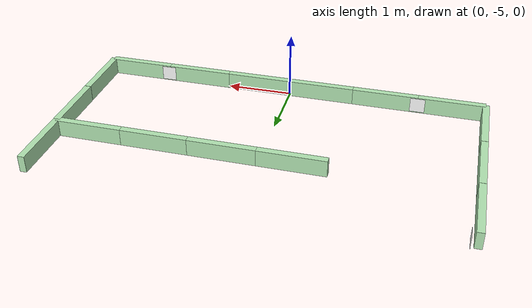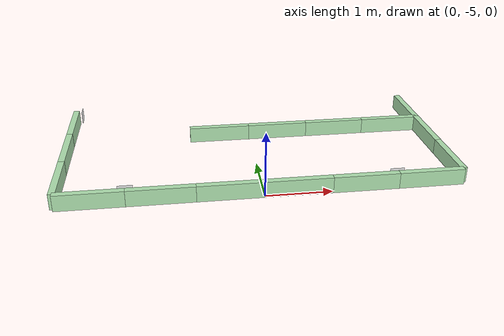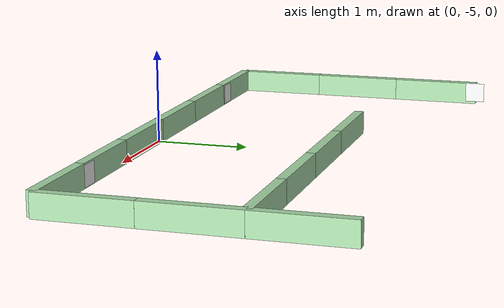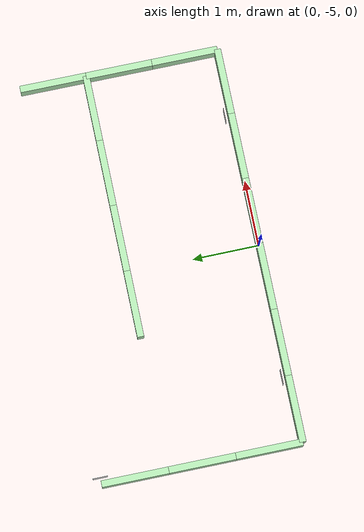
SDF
<sdf version="1.6">
 <world name="default">
  <model name="wall_100_25h_1_clone_3">
   <link name="link">
    <inertial>
     <mass>1</mass>
     <inertia>
      <ixx>0.166667</ixx>
      <ixy>0</ixy>
      <ixz>0</ixz>
      <iyy>0.166667</iyy>
      <iyz>0</iyz>
      <izz>0.166667</izz>
     </inertia>
    </inertial>
    <visual name="visual">
     <geometry><box><size>1 0.1 0.25</size></box></geometry>
     <material>
      <script><name>Gazebo/Grey</name><uri>file://media/materials/scripts/gazebo.material</uri></script>
      <ambient>0.3 0.5 0.3 1</ambient>
      <diffuse>0.7 0.9 0.7 1</diffuse>
      <specular>0.01 0.02 0.01 1</specular>
      <emissive>0 0 0 1</emissive>
      <lighting>1</lighting>
      <shader type="vertex"><normal_map>__default__</normal_map></shader>
     </material>
    </visual>
    <collision name="collision">
     <geometry><box><size>1 0.1 0.25</size></box></geometry>
     <surface>
      <friction>
       <ode><mu>1</mu><mu2>1</mu2><fdir1>0 0 0</fdir1><slip1>0</slip1><slip2>0</slip2></ode>
       <torsional>
        <coefficient>1</coefficient>
        <patch_radius>0</patch_radius>
        <surface_radius>0</surface_radius>
        <use_patch_radius>1</use_patch_radius>
        <ode><slip>0</slip></ode>
       </torsional>
      </friction>
      <bounce><restitution_coefficient>0</restitution_coefficient><threshold>1e+06</threshold></bounce>
      <contact>
       <collide_without_contact>0</collide_without_contact>
       <collide_without_contact_bitmask>1</collide_without_contact_bitmask>
       <collide_bitmask>1</collide_bitmask>
       <ode>
        <soft_cfm>0</soft_cfm>
        <soft_erp>0.2</soft_erp>
        <kp>1e+13</kp>
        <kd>1</kd>
        <max_vel>0.01</max_vel>
        <min_depth>0</min_depth>
       </ode>
       <bullet>
        <split_impulse>1</split_impulse>
        <split_impulse_penetration_threshold>-0.01</split_impulse_penetration_threshold>
        <soft_cfm>0</soft_cfm>
        <soft_erp>0.2</soft_erp>
        <kp>1e+13</kp>
        <kd>1</kd>
       </bullet>
      </contact>
     </surface>
    </collision>
   </link>
   <static>1</static>
   <pose>-0.5 -3 0.125 0.000404 -0 0</pose>
  </model>
  <model name="wall_100_25h_1_clone_4">
   <link name="link">
    <inertial>
     <mass>1</mass>
     <inertia>
      <ixx>0.166667</ixx>
      <ixy>0</ixy>
      <ixz>0</ixz>
      <iyy>0.166667</iyy>
      <iyz>0</iyz>
      <izz>0.166667</izz>
     </inertia>
    </inertial>
    <visual name="visual">
     <geometry><box><size>1 0.1 0.25</size></box></geometry>
     <material>
      <script><name>Gazebo/Grey</name><uri>file://media/materials/scripts/gazebo.material</uri></script>
      <ambient>0.3 0.5 0.3 1</ambient>
      <diffuse>0.7 0.9 0.7 1</diffuse>
      <specular>0.01 0.02 0.01 1</specular>
      <emissive>0 0 0 1</emissive>
      <lighting>1</lighting>
      <shader type="vertex"><normal_map>__default__</normal_map></shader>
     </material>
    </visual>
    <collision name="collision">
     <geometry><box><size>1 0.1 0.25</size></box></geometry>
     <surface>
      <friction>
       <ode><mu>1</mu><mu2>1</mu2><fdir1>0 0 0</fdir1><slip1>0</slip1><slip2>0</slip2></ode>
       <torsional>
        <coefficient>1</coefficient>
        <patch_radius>0</patch_radius>
        <surface_radius>0</surface_radius>
        <use_patch_radius>1</use_patch_radius>
        <ode><slip>0</slip></ode>
       </torsional>
      </friction>
      <bounce><restitution_coefficient>0</restitution_coefficient><threshold>1e+06</threshold></bounce>
      <contact>
       <collide_without_contact>0</collide_without_contact>
       <collide_without_contact_bitmask>1</collide_without_contact_bitmask>
       <collide_bitmask>1</collide_bitmask>
       <ode>
        <soft_cfm>0</soft_cfm>
        <soft_erp>0.2</soft_erp>
        <kp>1e+13</kp>
        <kd>1</kd>
        <max_vel>0.01</max_vel>
        <min_depth>0</min_depth>
       </ode>
       <bullet>
        <split_impulse>1</split_impulse>
        <split_impulse_penetration_threshold>-0.01</split_impulse_penetration_threshold>
        <soft_cfm>0</soft_cfm>
        <soft_erp>0.2</soft_erp>
        <kp>1e+13</kp>
        <kd>1</kd>
       </bullet>
      </contact>
     </surface>
    </collision>
   </link>
   <static>1</static>
   <pose>0.5 -3 0.125 0.000404 -0 0</pose>
  </model>
  <model name="wall_100_25h_1_clone_5">
   <link name="link">
    <inertial>
     <mass>1</mass>
     <inertia>
      <ixx>0.166667</ixx>
      <ixy>0</ixy>
      <ixz>0</ixz>
      <iyy>0.166667</iyy>
      <iyz>0</iyz>
      <izz>0.166667</izz>
     </inertia>
    </inertial>
    <visual name="visual">
     <geometry><box><size>1 0.1 0.25</size></box></geometry>
     <material>
      <script><name>Gazebo/Grey</name><uri>file://media/materials/scripts/gazebo.material</uri></script>
      <ambient>0.3 0.5 0.3 1</ambient>
      <diffuse>0.7 0.9 0.7 1</diffuse>
      <specular>0.01 0.02 0.01 1</specular>
      <emissive>0 0 0 1</emissive>
      <lighting>1</lighting>
      <shader type="vertex"><normal_map>__default__</normal_map></shader>
     </material>
    </visual>
    <collision name="collision">
     <geometry><box><size>1 0.1 0.25</size></box></geometry>
     <surface>
      <friction>
       <ode><mu>1</mu><mu2>1</mu2><fdir1>0 0 0</fdir1><slip1>0</slip1><slip2>0</slip2></ode>
       <torsional>
        <coefficient>1</coefficient>
        <patch_radius>0</patch_radius>
        <surface_radius>0</surface_radius>
        <use_patch_radius>1</use_patch_radius>
        <ode><slip>0</slip></ode>
       </torsional>
      </friction>
      <bounce><restitution_coefficient>0</restitution_coefficient><threshold>1e+06</threshold></bounce>
      <contact>
       <collide_without_contact>0</collide_without_contact>
       <collide_without_contact_bitmask>1</collide_without_contact_bitmask>
       <collide_bitmask>1</collide_bitmask>
       <ode>
        <soft_cfm>0</soft_cfm>
        <soft_erp>0.2</soft_erp>
        <kp>1e+13</kp>
        <kd>1</kd>
        <max_vel>0.01</max_vel>
        <min_depth>0</min_depth>
       </ode>
       <bullet>
        <split_impulse>1</split_impulse>
        <split_impulse_penetration_threshold>-0.01</split_impulse_penetration_threshold>
        <soft_cfm>0</soft_cfm>
        <soft_erp>0.2</soft_erp>
        <kp>1e+13</kp>
        <kd>1</kd>
       </bullet>
      </contact>
     </surface>
    </collision>
   </link>
   <static>1</static>
   <pose>1.5 -3 0.125 0.000404 -0 0</pose>
  </model>
  <model name="wall_100_25h_1_clone_6">
   <link name="link">
    <inertial>
     <mass>1</mass>
     <inertia>
      <ixx>0.166667</ixx>
      <ixy>0</ixy>
      <ixz>0</ixz>
      <iyy>0.166667</iyy>
      <iyz>0</iyz>
      <izz>0.166667</izz>
     </inertia>
    </inertial>
    <visual name="visual">
     <geometry><box><size>1 0.1 0.25</size></box></geometry>
     <material>
      <script><name>Gazebo/Grey</name><uri>file://media/materials/scripts/gazebo.material</uri></script>
      <ambient>0.3 0.5 0.3 1</ambient>
      <diffuse>0.7 0.9 0.7 1</diffuse>
      <specular>0.01 0.02 0.01 1</specular>
      <emissive>0 0 0 1</emissive>
      <lighting>1</lighting>
      <shader type="vertex"><normal_map>__default__</normal_map></shader>
     </material>
    </visual>
    <collision name="collision">
     <geometry><box><size>1 0.1 0.25</size></box></geometry>
     <surface>
      <friction>
       <ode><mu>1</mu><mu2>1</mu2><fdir1>0 0 0</fdir1><slip1>0</slip1><slip2>0</slip2></ode>
       <torsional>
        <coefficient>1</coefficient>
        <patch_radius>0</patch_radius>
        <surface_radius>0</surface_radius>
        <use_patch_radius>1</use_patch_radius>
        <ode><slip>0</slip></ode>
       </torsional>
      </friction>
      <bounce><restitution_coefficient>0</restitution_coefficient><threshold>1e+06</threshold></bounce>
      <contact>
       <collide_without_contact>0</collide_without_contact>
       <collide_without_contact_bitmask>1</collide_without_contact_bitmask>
       <collide_bitmask>1</collide_bitmask>
       <ode>
        <soft_cfm>0</soft_cfm>
        <soft_erp>0.2</soft_erp>
        <kp>1e+13</kp>
        <kd>1</kd>
        <max_vel>0.01</max_vel>
        <min_depth>0</min_depth>
       </ode>
       <bullet>
        <split_impulse>1</split_impulse>
        <split_impulse_penetration_threshold>-0.01</split_impulse_penetration_threshold>
        <soft_cfm>0</soft_cfm>
        <soft_erp>0.2</soft_erp>
        <kp>1e+13</kp>
        <kd>1</kd>
       </bullet>
      </contact>
     </surface>
    </collision>
   </link>
   <static>1</static>
   <pose>2.5 -3 0.125 0.000404 -0 0</pose>
  </model>
  <model name="wall_100_25h_1_clone_9_clone_clone">
   <link name="link">
    <inertial>
     <mass>1</mass>
     <inertia>
      <ixx>0.166667</ixx>
      <ixy>0</ixy>
      <ixz>0</ixz>
      <iyy>0.166667</iyy>
      <iyz>0</iyz>
      <izz>0.166667</izz>
     </inertia>
    </inertial>
    <visual name="visual">
     <geometry><box><size>1 0.1 0.25</size></box></geometry>
     <material>
      <script><name>Gazebo/Grey</name><uri>file://media/materials/scripts/gazebo.material</uri></script>
      <ambient>0.3 0.5 0.3 1</ambient>
      <diffuse>0.7 0.9 0.7 1</diffuse>
      <specular>0.01 0.02 0.01 1</specular>
      <emissive>0 0 0 1</emissive>
      <lighting>1</lighting>
      <shader type="vertex"><normal_map>__default__</normal_map></shader>
     </material>
    </visual>
    <collision name="collision">
     <geometry><box><size>1 0.1 0.25</size></box></geometry>
     <surface>
      <friction>
       <ode><mu>1</mu><mu2>1</mu2><fdir1>0 0 0</fdir1><slip1>0</slip1><slip2>0</slip2></ode>
       <torsional>
        <coefficient>1</coefficient>
        <patch_radius>0</patch_radius>
        <surface_radius>0</surface_radius>
        <use_patch_radius>1</use_patch_radius>
        <ode><slip>0</slip></ode>
       </torsional>
      </friction>
      <bounce><restitution_coefficient>0</restitution_coefficient><threshold>1e+06</threshold></bounce>
      <contact>
       <collide_without_contact>0</collide_without_contact>
       <collide_without_contact_bitmask>1</collide_without_contact_bitmask>
       <collide_bitmask>1</collide_bitmask>
       <ode>
        <soft_cfm>0</soft_cfm>
        <soft_erp>0.2</soft_erp>
        <kp>1e+13</kp>
        <kd>1</kd>
        <max_vel>0.01</max_vel>
        <min_depth>0</min_depth>
       </ode>
       <bullet>
        <split_impulse>1</split_impulse>
        <split_impulse_penetration_threshold>-0.01</split_impulse_penetration_threshold>
        <soft_cfm>0</soft_cfm>
        <soft_erp>0.2</soft_erp>
        <kp>1e+13</kp>
        <kd>1</kd>
       </bullet>
      </contact>
     </surface>
    </collision>
   </link>
   <static>1</static>
   <pose>-3 -2.5 0.125 0 0.000404 -1.57111</pose>
  </model>
  <model name="wall_100_25h_1_clone_9_clone_clone_0">
   <link name="link">
    <inertial>
     <mass>1</mass>
     <inertia>
      <ixx>0.166667</ixx>
      <ixy>0</ixy>
      <ixz>0</ixz>
      <iyy>0.166667</iyy>
      <iyz>0</iyz>
      <izz>0.166667</izz>
     </inertia>
    </inertial>
    <visual name="visual">
     <geometry><box><size>1 0.1 0.25</size></box></geometry>
     <material>
      <script><name>Gazebo/Grey</name><uri>file://media/materials/scripts/gazebo.material</uri></script>
      <ambient>0.3 0.5 0.3 1</ambient>
      <diffuse>0.7 0.9 0.7 1</diffuse>
      <specular>0.01 0.02 0.01 1</specular>
      <emissive>0 0 0 1</emissive>
      <lighting>1</lighting>
      <shader type="vertex"><normal_map>__default__</normal_map></shader>
     </material>
    </visual>
    <collision name="collision">
     <geometry><box><size>1 0.1 0.25</size></box></geometry>
     <surface>
      <friction>
       <ode><mu>1</mu><mu2>1</mu2><fdir1>0 0 0</fdir1><slip1>0</slip1><slip2>0</slip2></ode>
       <torsional>
        <coefficient>1</coefficient>
        <patch_radius>0</patch_radius>
        <surface_radius>0</surface_radius>
        <use_patch_radius>1</use_patch_radius>
        <ode><slip>0</slip></ode>
       </torsional>
      </friction>
      <bounce><restitution_coefficient>0</restitution_coefficient><threshold>1e+06</threshold></bounce>
      <contact>
       <collide_without_contact>0</collide_without_contact>
       <collide_without_contact_bitmask>1</collide_without_contact_bitmask>
       <collide_bitmask>1</collide_bitmask>
       <ode>
        <soft_cfm>0</soft_cfm>
        <soft_erp>0.2</soft_erp>
        <kp>1e+13</kp>
        <kd>1</kd>
        <max_vel>0.01</max_vel>
        <min_depth>0</min_depth>
       </ode>
       <bullet>
        <split_impulse>1</split_impulse>
        <split_impulse_penetration_threshold>-0.01</split_impulse_penetration_threshold>
        <soft_cfm>0</soft_cfm>
        <soft_erp>0.2</soft_erp>
        <kp>1e+13</kp>
        <kd>1</kd>
       </bullet>
      </contact>
     </surface>
    </collision>
   </link>
   <static>1</static>
   <pose>-3 -3.5 0.125 0 0.000404 -1.57111</pose>
  </model>
  <model name="wall_100_25h_1_clone_9_clone_clone_1">
   <link name="link">
    <inertial>
     <mass>1</mass>
     <inertia>
      <ixx>0.166667</ixx>
      <ixy>0</ixy>
      <ixz>0</ixz>
      <iyy>0.166667</iyy>
      <iyz>0</iyz>
      <izz>0.166667</izz>
     </inertia>
    </inertial>
    <visual name="visual">
     <geometry><box><size>1 0.1 0.25</size></box></geometry>
     <material>
      <script><name>Gazebo/Grey</name><uri>file://media/materials/scripts/gazebo.material</uri></script>
      <ambient>0.3 0.5 0.3 1</ambient>
      <diffuse>0.7 0.9 0.7 1</diffuse>
      <specular>0.01 0.02 0.01 1</specular>
      <emissive>0 0 0 1</emissive>
      <lighting>1</lighting>
      <shader type="vertex"><normal_map>__default__</normal_map></shader>
     </material>
    </visual>
    <collision name="collision">
     <geometry><box><size>1 0.1 0.25</size></box></geometry>
     <surface>
      <friction>
       <ode><mu>1</mu><mu2>1</mu2><fdir1>0 0 0</fdir1><slip1>0</slip1><slip2>0</slip2></ode>
       <torsional>
        <coefficient>1</coefficient>
        <patch_radius>0</patch_radius>
        <surface_radius>0</surface_radius>
        <use_patch_radius>1</use_patch_radius>
        <ode><slip>0</slip></ode>
       </torsional>
      </friction>
      <bounce><restitution_coefficient>0</restitution_coefficient><threshold>1e+06</threshold></bounce>
      <contact>
       <collide_without_contact>0</collide_without_contact>
       <collide_without_contact_bitmask>1</collide_without_contact_bitmask>
       <collide_bitmask>1</collide_bitmask>
       <ode>
        <soft_cfm>0</soft_cfm>
        <soft_erp>0.2</soft_erp>
        <kp>1e+13</kp>
        <kd>1</kd>
        <max_vel>0.01</max_vel>
        <min_depth>0</min_depth>
       </ode>
       <bullet>
        <split_impulse>1</split_impulse>
        <split_impulse_penetration_threshold>-0.01</split_impulse_penetration_threshold>
        <soft_cfm>0</soft_cfm>
        <soft_erp>0.2</soft_erp>
        <kp>1e+13</kp>
        <kd>1</kd>
       </bullet>
      </contact>
     </surface>
    </collision>
   </link>
   <static>1</static>
   <pose>-3 -4.5 0.125 0 0.000404 -1.57111</pose>
  </model>
  <model name="wall_100_25h_1_clone_9_clone_clone_2">
   <link name="link">
    <inertial>
     <mass>1</mass>
     <inertia>
      <ixx>0.166667</ixx>
      <ixy>0</ixy>
      <ixz>0</ixz>
      <iyy>0.166667</iyy>
      <iyz>0</iyz>
      <izz>0.166667</izz>
     </inertia>
    </inertial>
    <visual name="visual">
     <geometry><box><size>1 0.1 0.25</size></box></geometry>
     <material>
      <script><name>Gazebo/Grey</name><uri>file://media/materials/scripts/gazebo.material</uri></script>
      <ambient>0.3 0.5 0.3 1</ambient>
      <diffuse>0.7 0.9 0.7 1</diffuse>
      <specular>0.01 0.02 0.01 1</specular>
      <emissive>0 0 0 1</emissive>
      <lighting>1</lighting>
      <shader type="vertex"><normal_map>__default__</normal_map></shader>
     </material>
    </visual>
    <collision name="collision">
     <geometry><box><size>1 0.1 0.25</size></box></geometry>
     <surface>
      <friction>
       <ode><mu>1</mu><mu2>1</mu2><fdir1>0 0 0</fdir1><slip1>0</slip1><slip2>0</slip2></ode>
       <torsional>
        <coefficient>1</coefficient>
        <patch_radius>0</patch_radius>
        <surface_radius>0</surface_radius>
        <use_patch_radius>1</use_patch_radius>
        <ode><slip>0</slip></ode>
       </torsional>
      </friction>
      <bounce><restitution_coefficient>0</restitution_coefficient><threshold>1e+06</threshold></bounce>
      <contact>
       <collide_without_contact>0</collide_without_contact>
       <collide_without_contact_bitmask>1</collide_without_contact_bitmask>
       <collide_bitmask>1</collide_bitmask>
       <ode>
        <soft_cfm>0</soft_cfm>
        <soft_erp>0.2</soft_erp>
        <kp>1e+13</kp>
        <kd>1</kd>
        <max_vel>0.01</max_vel>
        <min_depth>0</min_depth>
       </ode>
       <bullet>
        <split_impulse>1</split_impulse>
        <split_impulse_penetration_threshold>-0.01</split_impulse_penetration_threshold>
        <soft_cfm>0</soft_cfm>
        <soft_erp>0.2</soft_erp>
        <kp>1e+13</kp>
        <kd>1</kd>
       </bullet>
      </contact>
     </surface>
    </collision>
   </link>
   <static>1</static>
   <pose>3 -3.5 0.125 0 0.000404 -1.57111</pose>
  </model>
  <model name="wall_100_25h_1_clone_9_clone_clone_3">
   <link name="link">
    <inertial>
     <mass>1</mass>
     <inertia>
      <ixx>0.166667</ixx>
      <ixy>0</ixy>
      <ixz>0</ixz>
      <iyy>0.166667</iyy>
      <iyz>0</iyz>
      <izz>0.166667</izz>
     </inertia>
    </inertial>
    <visual name="visual">
     <geometry><box><size>1 0.1 0.25</size></box></geometry>
     <material>
      <script><name>Gazebo/Grey</name><uri>file://media/materials/scripts/gazebo.material</uri></script>
      <ambient>0.3 0.5 0.3 1</ambient>
      <diffuse>0.7 0.9 0.7 1</diffuse>
      <specular>0.01 0.02 0.01 1</specular>
      <emissive>0 0 0 1</emissive>
      <lighting>1</lighting>
      <shader type="vertex"><normal_map>__default__</normal_map></shader>
     </material>
    </visual>
    <collision name="collision">
     <geometry><box><size>1 0.1 0.25</size></box></geometry>
     <surface>
      <friction>
       <ode><mu>1</mu><mu2>1</mu2><fdir1>0 0 0</fdir1><slip1>0</slip1><slip2>0</slip2></ode>
       <torsional>
        <coefficient>1</coefficient>
        <patch_radius>0</patch_radius>
        <surface_radius>0</surface_radius>
        <use_patch_radius>1</use_patch_radius>
        <ode><slip>0</slip></ode>
       </torsional>
      </friction>
      <bounce><restitution_coefficient>0</restitution_coefficient><threshold>1e+06</threshold></bounce>
      <contact>
       <collide_without_contact>0</collide_without_contact>
       <collide_without_contact_bitmask>1</collide_without_contact_bitmask>
       <collide_bitmask>1</collide_bitmask>
       <ode>
        <soft_cfm>0</soft_cfm>
        <soft_erp>0.2</soft_erp>
        <kp>1e+13</kp>
        <kd>1</kd>
        <max_vel>0.01</max_vel>
        <min_depth>0</min_depth>
       </ode>
       <bullet>
        <split_impulse>1</split_impulse>
        <split_impulse_penetration_threshold>-0.01</split_impulse_penetration_threshold>
        <soft_cfm>0</soft_cfm>
        <soft_erp>0.2</soft_erp>
        <kp>1e+13</kp>
        <kd>1</kd>
       </bullet>
      </contact>
     </surface>
    </collision>
   </link>
   <static>1</static>
   <pose>3 -4.5 0.125 0 0.000404 -1.57111</pose>
  </model>
  <model name="wall_100_25h_1_clone_9_clone_clone_4">
   <link name="link">
    <inertial>
     <mass>1</mass>
     <inertia>
      <ixx>0.166667</ixx>
      <ixy>0</ixy>
      <ixz>0</ixz>
      <iyy>0.166667</iyy>
      <iyz>0</iyz>
      <izz>0.166667</izz>
     </inertia>
    </inertial>
    <visual name="visual">
     <geometry><box><size>1 0.1 0.25</size></box></geometry>
     <material>
      <script><name>Gazebo/Grey</name><uri>file://media/materials/scripts/gazebo.material</uri></script>
      <ambient>0.3 0.5 0.3 1</ambient>
      <diffuse>0.7 0.9 0.7 1</diffuse>
      <specular>0.01 0.02 0.01 1</specular>
      <emissive>0 0 0 1</emissive>
      <lighting>1</lighting>
      <shader type="vertex"><normal_map>__default__</normal_map></shader>
     </material>
    </visual>
    <collision name="collision">
     <geometry><box><size>1 0.1 0.25</size></box></geometry>
     <surface>
      <friction>
       <ode><mu>1</mu><mu2>1</mu2><fdir1>0 0 0</fdir1><slip1>0</slip1><slip2>0</slip2></ode>
       <torsional>
        <coefficient>1</coefficient>
        <patch_radius>0</patch_radius>
        <surface_radius>0</surface_radius>
        <use_patch_radius>1</use_patch_radius>
        <ode><slip>0</slip></ode>
       </torsional>
      </friction>
      <bounce><restitution_coefficient>0</restitution_coefficient><threshold>1e+06</threshold></bounce>
      <contact>
       <collide_without_contact>0</collide_without_contact>
       <collide_without_contact_bitmask>1</collide_without_contact_bitmask>
       <collide_bitmask>1</collide_bitmask>
       <ode>
        <soft_cfm>0</soft_cfm>
        <soft_erp>0.2</soft_erp>
        <kp>1e+13</kp>
        <kd>1</kd>
        <max_vel>0.01</max_vel>
        <min_depth>0</min_depth>
       </ode>
       <bullet>
        <split_impulse>1</split_impulse>
        <split_impulse_penetration_threshold>-0.01</split_impulse_penetration_threshold>
        <soft_cfm>0</soft_cfm>
        <soft_erp>0.2</soft_erp>
        <kp>1e+13</kp>
        <kd>1</kd>
       </bullet>
      </contact>
     </surface>
    </collision>
   </link>
   <static>1</static>
   <pose>3 -2.5 0.125 0 0.000404 -1.57111</pose>
  </model>
  <model name="wall_100_25h_1_clone_3_clone">
   <link name="link">
    <inertial>
     <mass>1</mass>
     <inertia>
      <ixx>0.166667</ixx>
      <ixy>0</ixy>
      <ixz>0</ixz>
      <iyy>0.166667</iyy>
      <iyz>0</iyz>
      <izz>0.166667</izz>
     </inertia>
    </inertial>
    <visual name="visual">
     <geometry><box><size>1 0.1 0.25</size></box></geometry>
     <material>
      <script><name>Gazebo/Grey</name><uri>file://media/materials/scripts/gazebo.material</uri></script>
      <ambient>0.3 0.5 0.3 1</ambient>
      <diffuse>0.7 0.9 0.7 1</diffuse>
      <specular>0.01 0.02 0.01 1</specular>
      <emissive>0 0 0 1</emissive>
      <lighting>1</lighting>
      <shader type="vertex"><normal_map>__default__</normal_map></shader>
     </material>
    </visual>
    <collision name="collision">
     <geometry><box><size>1 0.1 0.25</size></box></geometry>
     <surface>
      <friction>
       <ode><mu>1</mu><mu2>1</mu2><fdir1>0 0 0</fdir1><slip1>0</slip1><slip2>0</slip2></ode>
       <torsional>
        <coefficient>1</coefficient>
        <patch_radius>0</patch_radius>
        <surface_radius>0</surface_radius>
        <use_patch_radius>1</use_patch_radius>
        <ode><slip>0</slip></ode>
       </torsional>
      </friction>
      <bounce><restitution_coefficient>0</restitution_coefficient><threshold>1e+06</threshold></bounce>
      <contact>
       <collide_without_contact>0</collide_without_contact>
       <collide_without_contact_bitmask>1</collide_without_contact_bitmask>
       <collide_bitmask>1</collide_bitmask>
       <ode>
        <soft_cfm>0</soft_cfm>
        <soft_erp>0.2</soft_erp>
        <kp>1e+13</kp>
        <kd>1</kd>
        <max_vel>0.01</max_vel>
        <min_depth>0</min_depth>
       </ode>
       <bullet>
        <split_impulse>1</split_impulse>
        <split_impulse_penetration_threshold>-0.01</split_impulse_penetration_threshold>
        <soft_cfm>0</soft_cfm>
        <soft_erp>0.2</soft_erp>
        <kp>1e+13</kp>
        <kd>1</kd>
       </bullet>
      </contact>
     </surface>
    </collision>
   </link>
   <static>1</static>
   <pose>-2.5 -5 0.125 0.000404 -0 0</pose>
  </model>
  <model name="wall_100_25h_1_clone_3_clone_0">
   <link name="link">
    <inertial>
     <mass>1</mass>
     <inertia>
      <ixx>0.166667</ixx>
      <ixy>0</ixy>
      <ixz>0</ixz>
      <iyy>0.166667</iyy>
      <iyz>0</iyz>
      <izz>0.166667</izz>
     </inertia>
    </inertial>
    <visual name="visual">
     <geometry><box><size>1 0.1 0.25</size></box></geometry>
     <material>
      <script><name>Gazebo/Grey</name><uri>file://media/materials/scripts/gazebo.material</uri></script>
      <ambient>0.3 0.5 0.3 1</ambient>
      <diffuse>0.7 0.9 0.7 1</diffuse>
      <specular>0.01 0.02 0.01 1</specular>
      <emissive>0 0 0 1</emissive>
      <lighting>1</lighting>
      <shader type="vertex"><normal_map>__default__</normal_map></shader>
     </material>
    </visual>
    <collision name="collision">
     <geometry><box><size>1 0.1 0.25</size></box></geometry>
     <surface>
      <friction>
       <ode><mu>1</mu><mu2>1</mu2><fdir1>0 0 0</fdir1><slip1>0</slip1><slip2>0</slip2></ode>
       <torsional>
        <coefficient>1</coefficient>
        <patch_radius>0</patch_radius>
        <surface_radius>0</surface_radius>
        <use_patch_radius>1</use_patch_radius>
        <ode><slip>0</slip></ode>
       </torsional>
      </friction>
      <bounce><restitution_coefficient>0</restitution_coefficient><threshold>1e+06</threshold></bounce>
      <contact>
       <collide_without_contact>0</collide_without_contact>
       <collide_without_contact_bitmask>1</collide_without_contact_bitmask>
       <collide_bitmask>1</collide_bitmask>
       <ode>
        <soft_cfm>0</soft_cfm>
        <soft_erp>0.2</soft_erp>
        <kp>1e+13</kp>
        <kd>1</kd>
        <max_vel>0.01</max_vel>
        <min_depth>0</min_depth>
       </ode>
       <bullet>
        <split_impulse>1</split_impulse>
        <split_impulse_penetration_threshold>-0.01</split_impulse_penetration_threshold>
        <soft_cfm>0</soft_cfm>
        <soft_erp>0.2</soft_erp>
        <kp>1e+13</kp>
        <kd>1</kd>
       </bullet>
      </contact>
     </surface>
    </collision>
   </link>
   <static>1</static>
   <pose>-1.5 -5 0.125 0.000404 -0 0</pose>
  </model>
  <model name="wall_100_25h_1_clone_3_clone_1">
   <link name="link">
    <inertial>
     <mass>1</mass>
     <inertia>
      <ixx>0.166667</ixx>
      <ixy>0</ixy>
      <ixz>0</ixz>
      <iyy>0.166667</iyy>
      <iyz>0</iyz>
      <izz>0.166667</izz>
     </inertia>
    </inertial>
    <visual name="visual">
     <geometry><box><size>1 0.1 0.25</size></box></geometry>
     <material>
      <script><name>Gazebo/Grey</name><uri>file://media/materials/scripts/gazebo.material</uri></script>
      <ambient>0.3 0.5 0.3 1</ambient>
      <diffuse>0.7 0.9 0.7 1</diffuse>
      <specular>0.01 0.02 0.01 1</specular>
      <emissive>0 0 0 1</emissive>
      <lighting>1</lighting>
      <shader type="vertex"><normal_map>__default__</normal_map></shader>
     </material>
    </visual>
    <collision name="collision">
     <geometry><box><size>1 0.1 0.25</size></box></geometry>
     <surface>
      <friction>
       <ode><mu>1</mu><mu2>1</mu2><fdir1>0 0 0</fdir1><slip1>0</slip1><slip2>0</slip2></ode>
       <torsional>
        <coefficient>1</coefficient>
        <patch_radius>0</patch_radius>
        <surface_radius>0</surface_radius>
        <use_patch_radius>1</use_patch_radius>
        <ode><slip>0</slip></ode>
       </torsional>
      </friction>
      <bounce><restitution_coefficient>0</restitution_coefficient><threshold>1e+06</threshold></bounce>
      <contact>
       <collide_without_contact>0</collide_without_contact>
       <collide_without_contact_bitmask>1</collide_without_contact_bitmask>
       <collide_bitmask>1</collide_bitmask>
       <ode>
        <soft_cfm>0</soft_cfm>
        <soft_erp>0.2</soft_erp>
        <kp>1e+13</kp>
        <kd>1</kd>
        <max_vel>0.01</max_vel>
        <min_depth>0</min_depth>
       </ode>
       <bullet>
        <split_impulse>1</split_impulse>
        <split_impulse_penetration_threshold>-0.01</split_impulse_penetration_threshold>
        <soft_cfm>0</soft_cfm>
        <soft_erp>0.2</soft_erp>
        <kp>1e+13</kp>
        <kd>1</kd>
       </bullet>
      </contact>
     </surface>
    </collision>
   </link>
   <static>1</static>
   <pose>-0.5 -5 0.125 0.000404 -0 0</pose>
  </model>
  <model name="wall_100_25h_1_clone_3_clone_2">
   <link name="link">
    <inertial>
     <mass>1</mass>
     <inertia>
      <ixx>0.166667</ixx>
      <ixy>0</ixy>
      <ixz>0</ixz>
      <iyy>0.166667</iyy>
      <iyz>0</iyz>
      <izz>0.166667</izz>
     </inertia>
    </inertial>
    <visual name="visual">
     <geometry><box><size>1 0.1 0.25</size></box></geometry>
     <material>
      <script><name>Gazebo/Grey</name><uri>file://media/materials/scripts/gazebo.material</uri></script>
      <ambient>0.3 0.5 0.3 1</ambient>
      <diffuse>0.7 0.9 0.7 1</diffuse>
      <specular>0.01 0.02 0.01 1</specular>
      <emissive>0 0 0 1</emissive>
      <lighting>1</lighting>
      <shader type="vertex"><normal_map>__default__</normal_map></shader>
     </material>
    </visual>
    <collision name="collision">
     <geometry><box><size>1 0.1 0.25</size></box></geometry>
     <surface>
      <friction>
       <ode><mu>1</mu><mu2>1</mu2><fdir1>0 0 0</fdir1><slip1>0</slip1><slip2>0</slip2></ode>
       <torsional>
        <coefficient>1</coefficient>
        <patch_radius>0</patch_radius>
        <surface_radius>0</surface_radius>
        <use_patch_radius>1</use_patch_radius>
        <ode><slip>0</slip></ode>
       </torsional>
      </friction>
      <bounce><restitution_coefficient>0</restitution_coefficient><threshold>1e+06</threshold></bounce>
      <contact>
       <collide_without_contact>0</collide_without_contact>
       <collide_without_contact_bitmask>1</collide_without_contact_bitmask>
       <collide_bitmask>1</collide_bitmask>
       <ode>
        <soft_cfm>0</soft_cfm>
        <soft_erp>0.2</soft_erp>
        <kp>1e+13</kp>
        <kd>1</kd>
        <max_vel>0.01</max_vel>
        <min_depth>0</min_depth>
       </ode>
       <bullet>
        <split_impulse>1</split_impulse>
        <split_impulse_penetration_threshold>-0.01</split_impulse_penetration_threshold>
        <soft_cfm>0</soft_cfm>
        <soft_erp>0.2</soft_erp>
        <kp>1e+13</kp>
        <kd>1</kd>
       </bullet>
      </contact>
     </surface>
    </collision>
   </link>
   <static>1</static>
   <pose>0.5 -5 0.125 0.000404 -0 0</pose>
  </model>
  <model name="wall_100_25h_1_clone_3_clone_3">
   <link name="link">
    <inertial>
     <mass>1</mass>
     <inertia>
      <ixx>0.166667</ixx>
      <ixy>0</ixy>
      <ixz>0</ixz>
      <iyy>0.166667</iyy>
      <iyz>0</iyz>
      <izz>0.166667</izz>
     </inertia>
    </inertial>
    <visual name="visual">
     <geometry><box><size>1 0.1 0.25</size></box></geometry>
     <material>
      <script><name>Gazebo/Grey</name><uri>file://media/materials/scripts/gazebo.material</uri></script>
      <ambient>0.3 0.5 0.3 1</ambient>
      <diffuse>0.7 0.9 0.7 1</diffuse>
      <specular>0.01 0.02 0.01 1</specular>
      <emissive>0 0 0 1</emissive>
      <lighting>1</lighting>
      <shader type="vertex"><normal_map>__default__</normal_map></shader>
     </material>
    </visual>
    <collision name="collision">
     <geometry><box><size>1 0.1 0.25</size></box></geometry>
     <surface>
      <friction>
       <ode><mu>1</mu><mu2>1</mu2><fdir1>0 0 0</fdir1><slip1>0</slip1><slip2>0</slip2></ode>
       <torsional>
        <coefficient>1</coefficient>
        <patch_radius>0</patch_radius>
        <surface_radius>0</surface_radius>
        <use_patch_radius>1</use_patch_radius>
        <ode><slip>0</slip></ode>
       </torsional>
      </friction>
      <bounce><restitution_coefficient>0</restitution_coefficient><threshold>1e+06</threshold></bounce>
      <contact>
       <collide_without_contact>0</collide_without_contact>
       <collide_without_contact_bitmask>1</collide_without_contact_bitmask>
       <collide_bitmask>1</collide_bitmask>
       <ode>
        <soft_cfm>0</soft_cfm>
        <soft_erp>0.2</soft_erp>
        <kp>1e+13</kp>
        <kd>1</kd>
        <max_vel>0.01</max_vel>
        <min_depth>0</min_depth>
       </ode>
       <bullet>
        <split_impulse>1</split_impulse>
        <split_impulse_penetration_threshold>-0.01</split_impulse_penetration_threshold>
        <soft_cfm>0</soft_cfm>
        <soft_erp>0.2</soft_erp>
        <kp>1e+13</kp>
        <kd>1</kd>
       </bullet>
      </contact>
     </surface>
    </collision>
   </link>
   <static>1</static>
   <pose>1.5 -5 0.125 0.000404 -0 0</pose>
  </model>
  <model name="wall_100_25h_1_clone_3_clone_4">
   <link name="link">
    <inertial>
     <mass>1</mass>
     <inertia>
      <ixx>0.166667</ixx>
      <ixy>0</ixy>
      <ixz>0</ixz>
      <iyy>0.166667</iyy>
      <iyz>0</iyz>
      <izz>0.166667</izz>
     </inertia>
    </inertial>
    <visual name="visual">
     <geometry><box><size>1 0.1 0.25</size></box></geometry>
     <material>
      <script><name>Gazebo/Grey</name><uri>file://media/materials/scripts/gazebo.material</uri></script>
      <ambient>0.3 0.5 0.3 1</ambient>
      <diffuse>0.7 0.9 0.7 1</diffuse>
      <specular>0.01 0.02 0.01 1</specular>
      <emissive>0 0 0 1</emissive>
      <lighting>1</lighting>
      <shader type="vertex"><normal_map>__default__</normal_map></shader>
     </material>
    </visual>
    <collision name="collision">
     <geometry><box><size>1 0.1 0.25</size></box></geometry>
     <surface>
      <friction>
       <ode><mu>1</mu><mu2>1</mu2><fdir1>0 0 0</fdir1><slip1>0</slip1><slip2>0</slip2></ode>
       <torsional>
        <coefficient>1</coefficient>
        <patch_radius>0</patch_radius>
        <surface_radius>0</surface_radius>
        <use_patch_radius>1</use_patch_radius>
        <ode><slip>0</slip></ode>
       </torsional>
      </friction>
      <bounce><restitution_coefficient>0</restitution_coefficient><threshold>1e+06</threshold></bounce>
      <contact>
       <collide_without_contact>0</collide_without_contact>
       <collide_without_contact_bitmask>1</collide_without_contact_bitmask>
       <collide_bitmask>1</collide_bitmask>
       <ode>
        <soft_cfm>0</soft_cfm>
        <soft_erp>0.2</soft_erp>
        <kp>1e+13</kp>
        <kd>1</kd>
        <max_vel>0.01</max_vel>
        <min_depth>0</min_depth>
       </ode>
       <bullet>
        <split_impulse>1</split_impulse>
        <split_impulse_penetration_threshold>-0.01</split_impulse_penetration_threshold>
        <soft_cfm>0</soft_cfm>
        <soft_erp>0.2</soft_erp>
        <kp>1e+13</kp>
        <kd>1</kd>
       </bullet>
      </contact>
     </surface>
    </collision>
   </link>
   <static>1</static>
   <pose>2.5 -5 0.125 0.000404 -0 0</pose>
  </model>
  <model name="aiil_hazard_explosives">
   <link name="marker">
    <visual name="visual">
     <geometry><box><size>0.222 0.222 1e-05</size></box></geometry>
     <material>
      <script>
       <uri>model://aiil_hazard_explosives/materials/scripts</uri>
       <uri>model://aiil_hazard_explosives/materials/textures</uri>
       <name>AIILHazardExplosive/Marker</name>
      </script>
      <ambient>1 1 1 1</ambient>
      <diffuse>1 1 1 1</diffuse>
      <specular>0 0 0 1</specular>
      <emissive>1 1 1 0</emissive>
      <shader type="vertex"><normal_map>__default__</normal_map></shader>
     </material>
    </visual>
    <collision name="collision"><geometry><box><size>0.222 0.222 1e-05</size></box></geometry></collision>
   </link>
   <link name="marker_pad">
    <pose frame="marker">0 0 -1e-05 0 -0 0</pose>
    <visual name="visual">
     <geometry><box><size>0.222 0.222 1e-05</size></box></geometry>
     <material>
      <lighting>1</lighting>
      <script><uri>file://media/materials/scripts/gazebo.material</uri><name>Gazebo/White</name></script>
      <ambient>0.3 0.3 0.3 1</ambient>
      <diffuse>0.7 0.7 0.7 1</diffuse>
      <specular>0.01 0.01 0.01 1</specular>
      <emissive>1 1 1 0</emissive>
      <shader type="vertex"><normal_map>__default__</normal_map></shader>
     </material>
    </visual>
    <collision name="collision"><geometry><box><size>0.222 0.222 1e-05</size></box></geometry></collision>
   </link>
   <joint name="marker_JOINT_marker_pad" type="revolute">
    <parent>marker</parent>
    <child>marker_pad</child>
    <axis>
     <xyz>0 0 1</xyz>
     <limit><upper>0</upper><lower>0</lower></limit>
     <use_parent_model_frame>0</use_parent_model_frame>
     <dynamics><spring_reference>0</spring_reference><spring_stiffness>0</spring_stiffness></dynamics>
    </axis>
   </joint>
   <static>1</static>
   <pose>2 -4.9 0.15 -1.56914 -1.57 -0.000857</pose>
  </model>
  <model name="aiil_hazard_corrosive">
   <link name="marker">
    <visual name="visual">
     <geometry><box><size>0.222 0.222 1e-05</size></box></geometry>
     <material>
      <script>
       <uri>model://aiil_hazard_corrosive/materials/scripts</uri>
       <uri>model://aiil_hazard_corrosive/materials/textures</uri>
       <name>AIILHazardcorrosive/Marker</name>
      </script>
      <ambient>1 1 1 1</ambient>
      <diffuse>1 1 1 1</diffuse>
      <specular>0 0 0 1</specular>
      <emissive>1 1 1 0</emissive>
      <shader type="vertex"><normal_map>__default__</normal_map></shader>
     </material>
    </visual>
    <collision name="collision"><geometry><box><size>0.222 0.222 1e-05</size></box></geometry></collision>
   </link>
   <link name="marker_pad">
    <pose frame="marker">0 0 -1e-05 0 -0 0</pose>
    <visual name="visual">
     <geometry><box><size>0.222 0.222 1e-05</size></box></geometry>
     <material>
      <lighting>1</lighting>
      <script><uri>file://media/materials/scripts/gazebo.material</uri><name>Gazebo/White</name></script>
      <ambient>0.3 0.3 0.3 1</ambient>
      <diffuse>0.7 0.7 0.7 1</diffuse>
      <specular>0.01 0.01 0.01 1</specular>
      <emissive>1 1 1 0</emissive>
      <shader type="vertex"><normal_map>__default__</normal_map></shader>
     </material>
    </visual>
    <collision name="collision"><geometry><box><size>0.222 0.222 1e-05</size></box></geometry></collision>
   </link>
   <joint name="marker_JOINT_marker_pad" type="revolute">
    <parent>marker</parent>
    <child>marker_pad</child>
    <axis>
     <xyz>0 0 1</xyz>
     <limit><upper>0</upper><lower>0</lower></limit>
     <use_parent_model_frame>0</use_parent_model_frame>
     <dynamics><spring_reference>0</spring_reference><spring_stiffness>0</spring_stiffness></dynamics>
    </axis>
   </joint>
   <static>1</static>
   <pose>-2 -4.90206 0.152056 -1.5704 -1.57 0.000398</pose>
  </model>
  <model name="aiil_hazard_dangerouswhenwet">
   <link name="marker">
    <visual name="visual">
     <geometry><box><size>0.222 0.222 1e-05</size></box></geometry>
     <material>
      <script>
       <uri>model://aiil_hazard_dangerouswhenwet/materials/scripts</uri>
       <uri>model://aiil_hazard_dangerouswhenwet/materials/textures</uri>
       <name>AIILHazarddangerouswhenwet/Marker</name>
      </script>
      <ambient>1 1 1 1</ambient>
      <diffuse>1 1 1 1</diffuse>
      <specular>0 0 0 1</specular>
      <emissive>1 1 1 0</emissive>
      <shader type="vertex"><normal_map>__default__</normal_map></shader>
     </material>
    </visual>
    <collision name="collision"><geometry><box><size>0.222 0.222 1e-05</size></box></geometry></collision>
   </link>
   <link name="marker_pad">
    <pose frame="marker">0 0 -1e-05 0 -0 0</pose>
    <visual name="visual">
     <geometry><box><size>0.222 0.222 1e-05</size></box></geometry>
     <material>
      <lighting>1</lighting>
      <script><uri>file://media/materials/scripts/gazebo.material</uri><name>Gazebo/White</name></script>
      <ambient>0.3 0.3 0.3 1</ambient>
      <diffuse>0.7 0.7 0.7 1</diffuse>
      <specular>0.01 0.01 0.01 1</specular>
      <emissive>1 1 1 0</emissive>
      <shader type="vertex"><normal_map>__default__</normal_map></shader>
     </material>
    </visual>
    <collision name="collision"><geometry><box><size>0.222 0.222 1e-05</size></box></geometry></collision>
   </link>
   <joint name="marker_JOINT_marker_pad" type="revolute">
    <parent>marker</parent>
    <child>marker_pad</child>
    <axis>
     <xyz>0 0 1</xyz>
     <limit><upper>0</upper><lower>0</lower></limit>
     <use_parent_model_frame>0</use_parent_model_frame>
     <dynamics><spring_reference>0</spring_reference><spring_stiffness>0</spring_stiffness></dynamics>
    </axis>
   </joint>
   <static>1</static>
   <pose>-2.9 -2.00147 0.149999 -1.57 -1.57 -1.57</pose>
  </model>
 </world>
</sdf>
